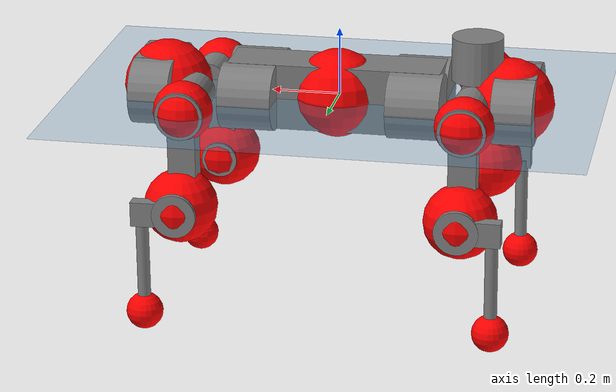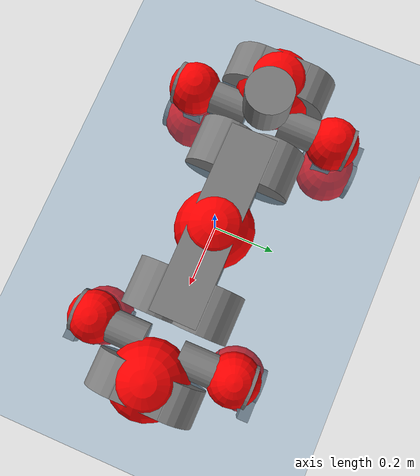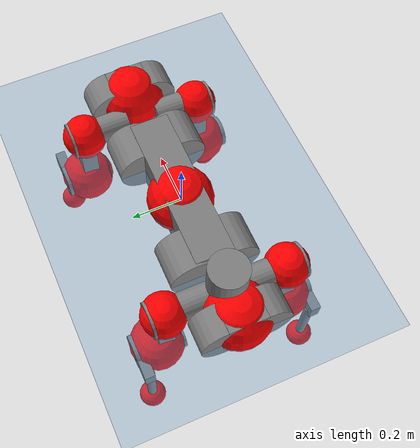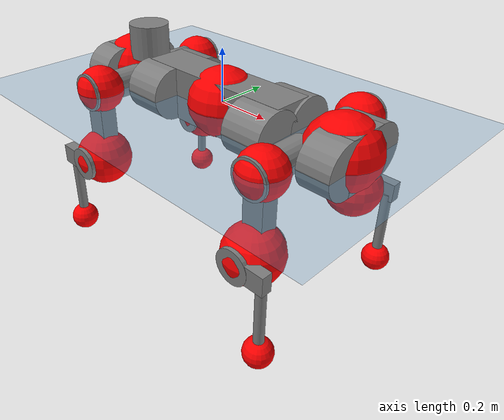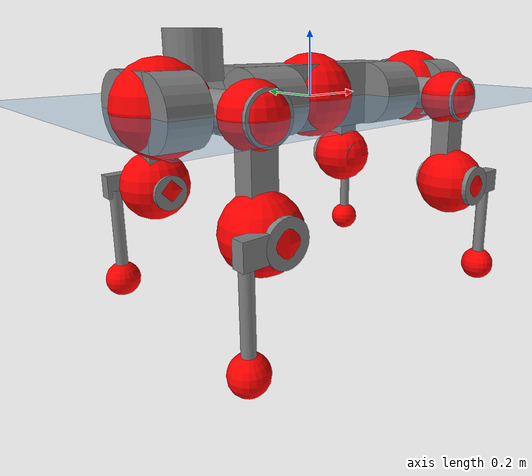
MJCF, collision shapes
<mujoco model="anymal_c">
  <compiler angle="radian" assetdir="assets" balanceinertia="true" inertiafromgeom="false"/>

  <option timestep="0.005" density="1.2" viscosity="2e-05"/>

  <size nkey="1"/>

  <visual>
    <quality shadowsize="8192"/>
    <map shadowclip="0.5"/>
  </visual>

  <default>
    <default class="/">
      <material specular="0" shininess="0.25"/>
      <geom contype="0" conaffinity="0" group="1" solref="-1000 -80"/>
      <site size="0.01 0.005 0.005" group="5"/>
      <general forcelimited="true" forcerange="-80 80" biastype="affine" gainprm="80" biasprm="0 -80 -2"/>
      <default class="anymal_c">
        <joint armature="0.01" damping="0.01" frictionloss="0.1"/>
        <default class="visual">
          <geom type="mesh" group="2"/>
          <default class="visual_zflip"/>
        </default>
        <default class="collision">
          <geom type="cylinder" group="3"/>
          <default class="foot">
            <geom size="0.03 0 0" type="sphere" condim="6" priority="1" friction="0.8 0.02 0.01" solimp="0.015 1 0.03"/>
          </default>
        </default>
      </default>
      <default class="reward_collision_sphere">
        <geom group="5" rgba="1 0 0 1"/>
      </default>
    </default>
  </default>

  <asset>
    <texture type="skybox" colorspace="auto" name="//unnamed_texture_0" builtin="gradient" rgb1="0.95 0.95 0.95" rgb2="0.95 0.95 0.95" width="100" height="600"/>
    <texture type="2d" colorspace="auto" name="texplane" builtin="checker" rgb1="0.345 0.575 0.748" rgb2="0.345 0.575 0.748" markrgb="1 1 1" width="512" height="512"/>
    <texture type="2d" colorspace="linear" name="base" file="base.png"/>
    <texture type="2d" colorspace="linear" name="top_shell" file="top_shell.png"/>
    <texture type="2d" colorspace="linear" name="bottom_shell" file="bottom_shell.png"/>
    <texture type="2d" colorspace="linear" name="remote" file="remote.png"/>
    <texture type="2d" colorspace="linear" name="hatch" file="hatch.png"/>
    <texture type="2d" colorspace="linear" name="handle" file="handle.png"/>
    <texture type="2d" colorspace="linear" name="face" file="face.png"/>
    <texture type="2d" colorspace="linear" name="battery" file="battery.png"/>
    <texture type="2d" colorspace="linear" name="lidar_cage" file="lidar_cage.png"/>
    <texture type="2d" colorspace="linear" name="depth_camera" file="depth_camera.png"/>
    <texture type="2d" colorspace="linear" name="wide_angle_camera" file="wide_angle_camera.png"/>
    <texture type="2d" colorspace="linear" name="lidar" file="lidar.png"/>
    <texture type="2d" colorspace="linear" name="drive" file="drive.png"/>
    <texture type="2d" colorspace="linear" name="hip_l" file="hip_l.png"/>
    <texture type="2d" colorspace="linear" name="shank_l" file="shank_l.png"/>
    <texture type="2d" colorspace="linear" name="foot" file="foot.png"/>
    <texture type="2d" colorspace="linear" name="thigh" file="thigh.png"/>
    <texture type="2d" colorspace="linear" name="shank_r" file="shank_r.png"/>
    <texture type="2d" colorspace="linear" name="hip_r" file="hip_r.png"/>
    <material name="MatPlane" class="/" texture="texplane" texuniform="true" texrepeat="2 2" specular="0.9" shininess="0.5"/>
    <material name="black_plastic" class="/" rgba="0.007 0.007 0.007 1"/>
    <material name="green" class="/" rgba="0.052 0.178 0.033 1"/>
    <material name="red" class="/" rgba="0.178 0.006 0.005 1"/>
    <material name="yellow" class="/" rgba="0.178 0.119 0.006 1"/>
    <material name="lwl" class="/" rgba="0.8 0.8 0.8 1"/>
    <material name="base" class="/" texture="base"/>
    <material name="top_shell" class="/" texture="top_shell"/>
    <material name="bottom_shell" class="/" texture="bottom_shell"/>
    <material name="hip_l" class="/" texture="hip_l"/>
    <material name="thigh" class="/" texture="thigh"/>
    <material name="shank_l" class="/" texture="shank_l"/>
    <material name="foot" class="/" texture="foot"/>
    <material name="hip_r" class="/" texture="hip_r"/>
    <material name="shank" class="/" texture="shank_r"/>
    <material name="hatch" class="/" texture="hatch"/>
    <material name="remote" class="/" texture="remote"/>
    <material name="handle" class="/" texture="handle"/>
    <material name="face" class="/" texture="face"/>
    <material name="depth_camera" class="/" texture="depth_camera"/>
    <material name="wide_angle_camera" class="/" texture="wide_angle_camera"/>
    <material name="battery" class="/" texture="battery"/>
    <material name="lidar_cage" class="/" texture="lidar_cage"/>
    <material name="lidar" class="/" texture="lidar"/>
    <material name="drive" class="/" texture="drive"/>
    <mesh name="base_0" class="/" file="base_0.obj"/>
    <mesh name="base_1" class="/" file="base_1.obj"/>
    <mesh name="base_2" class="/" file="base_2.obj"/>
    <mesh name="base_3" class="/" file="base_3.obj"/>
    <mesh name="base_4" class="/" file="base_4.obj"/>
    <mesh name="base_5" class="/" file="base_5.obj"/>
    <mesh name="top_shell" class="/" file="top_shell.obj"/>
    <mesh name="bottom_shell" class="/" file="bottom_shell.obj"/>
    <mesh name="remote" class="/" file="remote.obj"/>
    <mesh name="handle" class="/" file="handle.obj"/>
    <mesh name="face" class="/" file="face.obj"/>
    <mesh name="wide_angle_camera" class="/" file="wide_angle_camera.obj"/>
    <mesh name="depth_camera" class="/" file="depth_camera.obj"/>
    <mesh name="battery" class="/" file="battery.obj"/>
    <mesh name="lidar_cage" class="/" file="lidar_cage.obj"/>
    <mesh name="lidar" class="/" file="lidar.obj"/>
    <mesh name="drive" class="/" file="drive.obj"/>
    <mesh name="hip_l" class="/" file="hip_l.obj"/>
    <mesh name="thigh" class="/" file="thigh.obj"/>
    <mesh name="shank_l" class="/" file="shank_l.obj"/>
    <mesh name="foot" class="/" file="foot.obj"/>
    <mesh name="hip_r" class="/" file="hip_r.obj"/>
    <mesh name="hatch" class="/" file="hatch.obj"/>
    <mesh name="shank_r" class="/" file="shank_r.obj"/>
  </asset>

  <worldbody>
    <geom name="floor" class="/" size="100 100 0.125" type="plane" group="0" material="MatPlane"/>
    <light name="toplight_shadow" class="/" pos="0 0 5" dir="0.0990148 0.0990148 -0.990148" type="directional" ambient="0.04 0.04 0.04" diffuse="0.55 0.55 0.55" specular="0.12 0.12 0.12"/>
    <light name="toplight_fill" class="/" pos="0 0 5" dir="0.0990148 0.0990148 -0.990148" type="directional" castshadow="false" ambient="0.04 0.04 0.04" diffuse="0.3 0.3 0.3" specular="0.08 0.08 0.08"/>
    <body name="trunk" childclass="anymal_c" pos="0.005641 0.00125086 0.00314991" quat="0.999997 -0.000729094 0.00137529 -0.00172895">
      <inertial pos="0.00615198 -0.00366999 0.0467384" quat="0.51834 0.51224 0.495041 0.473148" mass="23.3541" diaginertia="1.02069 1.16562 0.166"/>
      <joint name="//unnamed_joint_0" type="free" armature="0" damping="0" frictionloss="0"/>
      <geom name="//unnamed_geom_1" class="visual" material="green" mesh="base_0"/>
      <geom name="//unnamed_geom_2" class="visual" material="yellow" mesh="base_1"/>
      <geom name="//unnamed_geom_3" class="visual" material="red" mesh="base_2"/>
      <geom name="//unnamed_geom_4" class="visual" material="black_plastic" mesh="base_3"/>
      <geom name="//unnamed_geom_5" class="visual" material="lwl" mesh="base_4"/>
      <geom name="//unnamed_geom_6" class="visual" material="base" mesh="base_5"/>
      <geom name="trunk_1" class="collision" size="0.316039 0.0762854 0.0980812" type="box"/>
      <geom name="trunk_2" class="collision" size="0.0980812 0.0790099" pos="0.247919 0.0800679 0" quat="0.707107 0 0.707107 0"/>
      <geom name="trunk_3" class="collision" size="0.0980812 0.0790099" pos="-0.247919 0.0800679 0" quat="0.707107 0 0.707107 0"/>
      <geom name="trunk_4" class="collision" size="0.0980812 0.0790099" pos="0.247919 -0.0800679 0" quat="0.707107 0 0.707107 0"/>
      <geom name="trunk_5" class="collision" size="0.0980812 0.0790099" pos="-0.247919 -0.0800679 0" quat="0.707107 0 0.707107 0"/>
      <geom name="//unnamed_geom_12" class="visual" material="top_shell" mesh="top_shell"/>
      <geom name="//unnamed_geom_13" class="visual" material="bottom_shell" mesh="bottom_shell"/>
      <geom name="//unnamed_geom_14" class="visual" material="remote" mesh="remote"/>
      <geom name="//unnamed_geom_15" class="visual" material="handle" mesh="handle"/>
      <geom name="//unnamed_geom_16" class="visual" pos="0.47247 0 0" quat="1 0 0 0" material="face" mesh="face"/>
      <geom name="trunk_6" class="collision" size="0.0599385 0.0762854 0.0980812" pos="0.535163 0 0" type="box"/>
      <geom name="//unnamed_geom_18" class="collision" size="0.0980812 0.0599385" pos="0.535163 0.0800679 0" quat="0.707107 0 0.707107 0"/>
      <geom name="//unnamed_geom_19" class="collision" size="0.0980812 0.0599385" pos="0.535163 -0.0800679 0" quat="0.707107 0 0.707107 0"/>
      <geom name="//unnamed_geom_20" class="visual" pos="0.526208 0 -0.0276105" quat="0.965926 0 0.258819 0" material="depth_camera" mesh="depth_camera"/>
      <geom name="//unnamed_geom_21" class="visual" pos="0.584746 0 0.0147558" material="wide_angle_camera" mesh="wide_angle_camera"/>
      <geom name="//unnamed_geom_22" class="visual_zflip" pos="-0.47247 0 0" quat="0 0 0 1" material="face" mesh="face"/>
      <geom name="trunk_7" class="collision" size="0.0599385 0.0762854 0.0980812" pos="-0.535163 0 0" quat="0 0 0 1" type="box"/>
      <geom name="//unnamed_geom_24" class="collision" size="0.0980812 0.0599385" pos="-0.535163 -0.0800679 0" quat="0 -0.707107 0 0.707107"/>
      <geom name="//unnamed_geom_25" class="collision" size="0.0980812 0.0599385" pos="-0.535163 0.0800679 0" quat="0 -0.707107 0 0.707107"/>
      <geom name="//unnamed_geom_26" class="visual" pos="-0.526208 0 -0.0276105" quat="0 -0.258819 0 0.965926" material="depth_camera" mesh="depth_camera"/>
      <geom name="//unnamed_geom_27" class="visual_zflip" pos="-0.584746 0 0.0147558" quat="0 0 0 1" material="wide_angle_camera" mesh="wide_angle_camera"/>
      <geom name="//unnamed_geom_28" class="visual" material="battery" mesh="battery"/>
      <geom name="//unnamed_geom_29" class="visual" pos="0 0.0875027 0.029806" quat="0.683013 -0.183013 0.183013 0.683013" material="depth_camera" mesh="depth_camera"/>
      <geom name="//unnamed_geom_30" class="visual" pos="0 -0.0875027 0.029806" quat="0.683013 0.183013 0.183013 -0.683013" material="depth_camera" mesh="depth_camera"/>
      <geom name="//unnamed_geom_31" class="visual" pos="-0.414908 0 0.0724483" quat="1 0 0 0" material="lidar_cage" mesh="lidar_cage"/>
      <geom name="trunk_8" class="collision" size="0.0762854 0.0653875" pos="-0.414908 0 0.13159"/>
      <geom name="//unnamed_geom_33" class="visual" pos="-0.414908 1.55993e-06 0.140165" quat="0.707107 0 0 -0.707107" material="lidar" mesh="lidar"/>
      <geom name="//unnamed_geom_34" class="visual" pos="0.341843 0.118902 2.72787e-09" quat="0.258819 0.965926 0 0" material="drive" mesh="drive"/>
      <geom name="//unnamed_geom_35" class="visual" pos="0.341843 -0.118902 -2.72787e-09" quat="0.258819 -0.965926 0 0" material="drive" mesh="drive"/>
      <geom name="//unnamed_geom_36" class="visual" pos="-0.341843 0.118902 -2.72787e-09" quat="0 0 0.965926 -0.258819" material="drive" mesh="drive"/>
      <geom name="//unnamed_geom_37" class="visual" pos="-0.341843 -0.118902 2.72787e-09" quat="0 0 -0.965926 -0.258819" material="drive" mesh="drive"/>
      <geom name="//unnamed_geom_38" class="visual" pos="0.132223 0 0.0719554" quat="1 0 0 0" material="hatch" mesh="hatch"/>
      <geom name="//unnamed_geom_39" class="reward_collision_sphere" size="0.130775"/>
      <geom name="//unnamed_geom_40" class="reward_collision_sphere" size="0.130775" pos="0.512935 0 0"/>
      <geom name="//unnamed_geom_41" class="reward_collision_sphere" size="0.130775" pos="-0.512935 0 0"/>
      <site name="imu" pos="0.264965 0.0635361 0.0526597" size="0.0108979"/>
      <camera name="track" pos="0 -2.28765 0" quat="0.707107 0.707107 0 0" mode="trackcom"/>
      <camera name="ego_camera" pos="0.512935 0 -0.0394276" quat="-0.5 -0.5 0.5 0.5"/>
      <body name="LF_HIP" pos="0.343627 0.119157 0.0045489" quat="0.257489 0.966268 0.00477928 -0.00156062">
        <inertial pos="0.0679125 -0.0152332 -0.00788644" quat="-0.151572 0.695651 -0.140444 0.68802" mass="3.2058" diaginertia="0.00993685 0.00861029 0.00260465"/>
        <joint name="LF_HAA" pos="0 0 0" axis="0.999835 -0.00531426 -0.0173762" range="-0.894291 0.47276" armature="0.00724354" damping="0.0240196" frictionloss="0.10265"/>
        <geom name="//unnamed_geom_42" class="visual" pos="0 0.000160468 -2.63568e-05" quat="0.258819 -0.965926 0 0" material="hip_l" mesh="hip_l"/>
        <geom name="//unnamed_geom_43" class="visual" pos="0.0682774 -0.0827287 -0.0465938" quat="0.183013 -0.683013 0.683013 0.183013" material="drive" mesh="drive"/>
        <geom name="//unnamed_geom_44" class="collision" size="0.0544896 0.0762854" pos="0.0682774 -0.0136799 -0.00680619" quat="-0.353553 -0.612372 0.612372 -0.353553"/>
        <body name="LF_THIGH" pos="0.0679254 -0.0828559 -0.0421901" quat="0.183226 -0.683694 0.682304 0.182897">
          <inertial pos="0.0337154 0.00891014 -0.231332" quat="0.993275 -0.00553018 -0.0817174 0.0818296" mass="4.02024" diaginertia="0.0602329 0.0625879 0.0040173"/>
          <joint name="LF_HFE" pos="0 0 0" axis="1 -9.98358e-06 0.000318676" range="-3.15556 2.93617" armature="0.0129582" damping="0.056845" frictionloss="0.110727"/>
          <geom name="//unnamed_geom_45" class="visual" pos="-7.89986e-05 -1.24483e-07 0" quat="0.707107 0 0 -0.707107" material="thigh" mesh="thigh"/>
          <geom name="//unnamed_geom_46" class="collision" size="0.0708364 0.0435917" pos="0.0455943 0 0" quat="0.5 0.5 -0.5 -0.5"/>
          <geom name="//unnamed_geom_47" class="collision" size="0.0408672 0.0326937 0.154003" pos="0.0341957 0 -0.139292" quat="0.707107 0 0 -0.707107" type="box"/>
          <geom name="//unnamed_geom_48" class="visual" pos="0.114328 0 -0.280922" quat="1 0 0 0" material="drive" mesh="drive"/>
          <geom name="//unnamed_geom_49" class="collision" size="0.0544896 0.0762854" pos="0.0345376 0 -0.280922" quat="0.707107 0 0.707107 0"/>
          <geom name="//unnamed_geom_50" class="reward_collision_sphere" size="0.0871833" pos="0.0284964 0 0"/>
          <body name="LF_SHANK" pos="0.103413 -0.00959422 -0.286119" quat="1 1.43275e-05 -3.47177e-05 1.36813e-05">
            <inertial pos="0.00686395 -0.0663279 -0.0846991" quat="0.993003 -0.11533 -0.000736375 -0.0253683" mass="0.69182" diaginertia="0.0186243 0.0184043 0.00106339"/>
            <joint name="LF_KFE" pos="0 0 0" axis="0.999963 -0.00487982 -0.00707268" stiffness="0.0501442" range="-3.24148 3.29955" armature="0.0111815" damping="0.00932253" frictionloss="0.101122"/>
            <geom name="//unnamed_geom_51" class="visual" pos="-2.57597e-05 -0.000137352 0" quat="0.707107 0 0 -0.707107" material="shank_l" mesh="shank_l"/>
            <geom name="LF_kfe_act" class="collision" size="0.0653875 0.0217958" pos="0.0227971 0 0" quat="0.5 0.5 -0.5 -0.5"/>
            <geom name="//unnamed_geom_53" class="collision" size="0.0626619 0.0367805 0.020706" pos="0.0227971 -0.0657689 0" quat="0.5 0.5 -0.5 -0.5" type="box"/>
            <geom name="//unnamed_geom_54" class="visual" pos="0.0148751 -0.100644 -0.333134" quat="0.382683 0 0 -0.92388" material="foot" mesh="foot"/>
            <geom name="LF_calf" class="collision" size="0.0190713 0.153935" pos="0.0148751 -0.1006 -0.166567" quat="0.707107 0 0 -0.707107"/>
            <geom name="LF_foot" class="foot" size="0.0439074" pos="0.0148751 -0.1006 -0.310956" quat="0.707107 0 0 -0.707107"/>
            <geom name="//unnamed_geom_57" class="reward_collision_sphere" size="0.108979" pos="-0.0569928 0 0"/>
            <geom name="//unnamed_geom_58" class="reward_collision_sphere" size="0.0544896" pos="0.0148751 -0.1006 -0.310956"/>
            <site name="LF_foot" class="foot" pos="0.0148751 -0.1006 -0.310956" quat="0.707107 0 0 -0.707107" size="0.0108979"/>
          </body>
        </body>
      </body>
      <body name="RF_HIP" pos="0.339034 -0.122118 -0.00925474" quat="0.259118 -0.965846 -0.000210797 -1.06752e-05">
        <inertial pos="0.0649708 0.0227366 -0.00671835" quat="0.103364 0.69684 0.148067 0.694123" mass="3.16439" diaginertia="0.0103673 0.00828362 0.00272885"/>
        <joint name="RF_HAA" pos="0 0 0" axis="1 0.000302461 -0.000798454" range="-0.608948 0.75504" armature="0.0106252" damping="0.0176295" frictionloss="0.102821"/>
        <geom name="//unnamed_geom_59" class="visual" pos="0 -0.000160467 -2.63567e-05" quat="0.258819 0.965926 0 0" material="hip_r" mesh="hip_r"/>
        <geom name="//unnamed_geom_60" class="visual" pos="0.0682774 0.0827287 -0.0465938" quat="0.183013 0.683013 0.683013 -0.183013" material="drive" mesh="drive"/>
        <geom name="//unnamed_geom_61" class="collision" size="0.0544896 0.0762854" pos="0.0682774 0.0136799 -0.00680619" quat="-0.353553 0.612372 0.612372 0.353553"/>
        <body name="RF_THIGH" pos="0.0655741 0.0798145 -0.0345398" quat="0.182956 0.68322 0.682698 -0.183469">
          <inertial pos="0.0354674 -3.47609e-05 -0.232627" quat="0.993422 -0.0562682 -0.0627049 0.0775565" mass="3.48079" diaginertia="0.0536535 0.0515269 0.00342694"/>
          <joint name="RF_HFE" pos="0 0 0" axis="0.999854 -0.00118435 0.017041" stiffness="0.0105478" range="-2.95547 3.00549" armature="0.0142693" damping="0.0110659" frictionloss="0.110629"/>
          <geom name="//unnamed_geom_62" class="visual" pos="-7.89986e-05 -1.24483e-07 0" quat="0.707107 0 0 -0.707107" material="thigh" mesh="thigh"/>
          <geom name="//unnamed_geom_63" class="collision" size="0.0708364 0.0435917" pos="0.0455943 0 0" quat="0.5 0.5 0.5 0.5"/>
          <geom name="//unnamed_geom_64" class="collision" size="0.0408672 0.0326937 0.154003" pos="0.0341957 0 -0.139292" quat="0.707107 0 0 0.707107" type="box"/>
          <geom name="//unnamed_geom_65" class="visual" pos="0.114328 0 -0.280922" quat="1 0 0 0" material="drive" mesh="drive"/>
          <geom name="//unnamed_geom_66" class="collision" size="0.0544896 0.0762854" pos="0.0345376 0 -0.280922" quat="0.707107 0 0.707107 0"/>
          <geom name="//unnamed_geom_67" class="reward_collision_sphere" size="0.0871833" pos="0.0284964 0 0"/>
          <body name="RF_SHANK" pos="0.113534 0.00211598 -0.281911" quat="1 -0.000100758 -0.000101473 -5.48119e-05">
            <inertial pos="0.00703458 0.0721468 -0.0906341" quat="0.991684 0.12604 0.0132761 0.0223761" mass="0.937662" diaginertia="0.0217137 0.0178766 0.0013133"/>
            <joint name="RF_KFE" pos="0 0 0" axis="0.999973 -0.00384573 -0.00626624" range="-3.07827 3.20855" armature="0.00753262" damping="0.0066378" frictionloss="0.10805"/>
            <geom name="//unnamed_geom_68" class="visual" pos="-2.57596e-05 0.000137352 0" quat="0.707107 0 0 0.707107" material="shank" mesh="shank_r"/>
            <geom name="RF_kfe_act" class="collision" size="0.0653875 0.0217958" pos="0.0227971 0 0" quat="0.5 0.5 0.5 0.5"/>
            <geom name="//unnamed_geom_70" class="collision" size="0.0626619 0.0367805 0.020706" pos="0.0227971 0.0657689 0" quat="0.5 0.5 0.5 0.5" type="box"/>
            <geom name="//unnamed_geom_71" class="visual" pos="0.0148751 0.100644 -0.333134" quat="0.382683 0 0 0.92388" material="foot" mesh="foot"/>
            <geom name="RF_calf" class="collision" size="0.0190713 0.153935" pos="0.0148751 0.1006 -0.166567" quat="0.707107 0 0 0.707107"/>
            <geom name="RF_foot" class="foot" size="0.0314131" pos="0.0148751 0.1006 -0.310956" quat="0.707107 0 0 0.707107"/>
            <geom name="//unnamed_geom_74" class="reward_collision_sphere" size="0.108979" pos="-0.0569928 0 0"/>
            <geom name="//unnamed_geom_75" class="reward_collision_sphere" size="0.0544896" pos="0.0148751 0.1006 -0.310956"/>
            <site name="RF_foot" class="foot" pos="0.0148751 0.1006 -0.310956" quat="0.707107 0 0 0.707107" size="0.0108979"/>
          </body>
        </body>
      </body>
      <body name="LH_HIP" pos="-0.342317 0.121785 0.00882429" quat="0.000258323 -0.000487411 0.9659 -0.258914">
        <inertial pos="0.0661084 0.0154717 0.000429286" quat="0.140926 0.676672 0.130672 0.71076" mass="3.15029" diaginertia="0.00998486 0.0100574 0.00307276"/>
        <joint name="LH_HAA" pos="0 0 0" axis="0.999996 0.00264929 0.000777357" range="-0.698552 0.550079" armature="0.0106067" damping="0.0296233" frictionloss="0.0627607"/>
        <geom name="//unnamed_geom_76" class="visual" pos="0 -0.000160467 -2.63567e-05" quat="-0.258819 -0.965926 0 0" material="hip_r" mesh="hip_r"/>
        <geom name="//unnamed_geom_77" class="visual" pos="0.0682774 0.0827287 -0.0465938" quat="0.183013 0.683013 0.683013 -0.183013" material="drive" mesh="drive"/>
        <geom name="//unnamed_geom_78" class="collision" size="0.0544896 0.0762854" pos="0.0682774 0.0136799 -0.00680619" quat="-0.353553 0.612372 0.612372 0.353553"/>
        <body name="LH_THIGH" pos="0.0692563 0.0832596 -0.0395458" quat="0.183078 0.683112 0.682769 -0.183486">
          <inertial pos="0.0432991 0.000937834 -0.231435" quat="0.991659 0.0128028 -0.110305 0.0654368" mass="3.83026" diaginertia="0.0632292 0.0582855 0.00420217"/>
          <joint name="LH_HFE" pos="0 0 0" axis="0.999167 -0.0100638 -0.0395368" stiffness="0.00381866" range="-2.97156 3.12615" armature="0.0101446" damping="0.00458009" frictionloss="0.10036"/>
          <geom name="//unnamed_geom_79" class="visual" pos="-7.89986e-05 -1.24483e-07 0" quat="0.707107 0 0 -0.707107" material="thigh" mesh="thigh"/>
          <geom name="//unnamed_geom_80" class="collision" size="0.0708364 0.0435917" pos="0.0455943 0 0" quat="0.5 0.5 -0.5 -0.5"/>
          <geom name="//unnamed_geom_81" class="collision" size="0.0408672 0.0326937 0.154003" pos="0.0341957 0 -0.139292" quat="0.707107 0 0 -0.707107" type="box"/>
          <geom name="//unnamed_geom_82" class="visual" pos="0.114328 0 -0.280922" quat="1 0 0 0" material="drive" mesh="drive"/>
          <geom name="//unnamed_geom_83" class="collision" size="0.0544896 0.0762854" pos="0.0345376 0 -0.280922" quat="0.707107 0 0.707107 0"/>
          <geom name="//unnamed_geom_84" class="reward_collision_sphere" size="0.0871833" pos="0.0284964 0 0"/>
          <body name="LH_SHANK" pos="0.118618 -0.00224964 -0.274887" quat="0.999999 -0.000974977 0.000513317 0.000642476">
            <inertial pos="0.00237349 0.0743229 -0.0845401" quat="0.992549 0.106897 -0.00334064 0.0583754" mass="0.826118" diaginertia="0.019633 0.0178033 0.00106602"/>
            <joint name="LH_KFE" pos="0 0 0" axis="0.99987 0.00480419 -0.0153899" stiffness="0.0536962" range="-3.16351 3.14426" armature="0.0111708" damping="0.0166534" frictionloss="0.0868609"/>
            <geom name="//unnamed_geom_85" class="visual" pos="-2.57596e-05 0.000137352 0" quat="-0.707107 0 0 -0.707107" material="shank" mesh="shank_r"/>
            <geom name="LH_kfe_act" class="collision" size="0.0653875 0.0217958" pos="0.0227971 0 0" quat="0.5 0.5 -0.5 -0.5"/>
            <geom name="//unnamed_geom_87" class="collision" size="0.0626619 0.0367805 0.020706" pos="0.0227971 0.0657689 0" quat="0.5 0.5 -0.5 -0.5" type="box"/>
            <geom name="//unnamed_geom_88" class="visual" pos="0.0148751 0.100644 -0.333134" quat="-0.382683 0 0 -0.92388" material="foot" mesh="foot"/>
            <geom name="LH_calf" class="collision" size="0.0190713 0.153935" pos="0.0148751 0.1006 -0.166567" quat="0.707107 0 0 -0.707107"/>
            <geom name="LH_foot" class="foot" size="0.0307454" pos="0.0148751 0.1006 -0.310956" quat="0.707107 0 0 -0.707107"/>
            <geom name="//unnamed_geom_91" class="reward_collision_sphere" size="0.108979" pos="-0.0569928 0 0"/>
            <geom name="//unnamed_geom_92" class="reward_collision_sphere" size="0.0544896" pos="0.0148751 0.1006 -0.310956"/>
            <site name="LH_foot" class="foot" pos="0.0148751 0.1006 -0.310956" quat="0.707107 0 0 -0.707107" size="0.0108979"/>
          </body>
        </body>
      </body>
      <body name="RH_HIP" pos="-0.341741 -0.118565 -0.00421482" quat="0.000665812 0.000353247 -0.966 -0.25854">
        <inertial pos="0.0662075 -0.025782 -0.0025868" quat="-0.128158 0.70968 -0.135473 0.679394" mass="3.93649" diaginertia="0.0125513 0.0107628 0.00342624"/>
        <joint name="RH_HAA" pos="0 0 0" axis="0.999987 -0.00468764 -0.00197248" range="-0.752359 0.62932" armature="0.0126796" damping="0.0453198" frictionloss="0.101365"/>
        <geom name="//unnamed_geom_93" class="visual" pos="0 0.000160468 -2.63568e-05" quat="-0.258819 0.965926 0 0" material="hip_l" mesh="hip_l"/>
        <geom name="//unnamed_geom_94" class="visual" pos="0.0682774 -0.0827287 -0.0465938" quat="-0.183013 0.683013 -0.683013 -0.183013" material="drive" mesh="drive"/>
        <geom name="//unnamed_geom_95" class="collision" size="0.0544896 0.0762854" pos="0.0682774 -0.0136799 -0.00680619" quat="0.353553 0.612372 -0.612372 0.353553"/>
        <body name="RH_THIGH" pos="0.0690014 -0.0857116 -0.0504702" quat="-0.182864 0.682771 -0.68332 -0.182914">
          <inertial pos="0.0396355 -0.0056507 -0.241682" quat="0.993244 -0.00622267 -0.0798136 0.0840075" mass="4.7127" diaginertia="0.0613768 0.0624207 0.00387236"/>
          <joint name="RH_HFE" pos="0 0 0" axis="0.999977 0.00675022 0.000580336" range="-2.95605 2.97274" armature="0.0115907" damping="0.00653617" frictionloss="0.148447"/>
          <geom name="//unnamed_geom_96" class="visual" pos="-7.89986e-05 -1.24483e-07 0" quat="0.707107 0 0 -0.707107" material="thigh" mesh="thigh"/>
          <geom name="//unnamed_geom_97" class="collision" size="0.0708364 0.0435917" pos="0.0455943 0 0" quat="0.5 0.5 0.5 0.5"/>
          <geom name="//unnamed_geom_98" class="collision" size="0.0408672 0.0326937 0.154003" pos="0.0341957 0 -0.139292" quat="0.707107 0 0 0.707107" type="box"/>
          <geom name="//unnamed_geom_99" class="visual" pos="0.114328 0 -0.280922" quat="1 0 0 0" material="drive" mesh="drive"/>
          <geom name="//unnamed_geom_100" class="collision" size="0.0544896 0.0762854" pos="0.0345376 0 -0.280922" quat="0.707107 0 0.707107 0"/>
          <geom name="//unnamed_geom_101" class="reward_collision_sphere" size="0.0871833" pos="0.0284964 0 0"/>
          <body name="RH_SHANK" pos="0.104885 -0.000502775 -0.283534" quat="1 2.2346e-05 0.000222778 -0.000509424">
            <inertial pos="0.00500396 -0.0694201 -0.0800293" quat="0.992805 -0.116059 0.00315056 -0.0293027" mass="0.872327" diaginertia="0.0206881 0.0188095 0.00113373"/>
            <joint name="RH_KFE" pos="0 0 0" axis="0.999838 -0.0082675 0.0159713" stiffness="0.0176677" range="-3.10616 3.05985" armature="0.0122209" damping="0.0539494" frictionloss="0.100235"/>
            <geom name="//unnamed_geom_102" class="visual" pos="-2.57597e-05 -0.000137352 0" quat="0.707107 0 0 -0.707107" material="shank_l" mesh="shank_l"/>
            <geom name="RH_kfe_act" class="collision" size="0.0653875 0.0217958" pos="0.0227971 0 0" quat="0.5 0.5 0.5 0.5"/>
            <geom name="//unnamed_geom_104" class="collision" size="0.0626619 0.0367805 0.020706" pos="0.0227971 -0.0657689 0" quat="0.5 0.5 0.5 0.5" type="box"/>
            <geom name="//unnamed_geom_105" class="visual" pos="0.0148751 -0.100644 -0.333134" quat="0.382683 0 0 -0.92388" material="foot" mesh="foot"/>
            <geom name="RH_calf" class="collision" size="0.0190713 0.153935" pos="0.0148751 -0.1006 -0.166567" quat="0.707107 0 0 0.707107"/>
            <geom name="RH_foot" class="foot" size="0.0308664" pos="0.0148751 -0.1006 -0.310956" quat="0.707107 0 0 0.707107"/>
            <geom name="//unnamed_geom_108" class="reward_collision_sphere" size="0.108979" pos="-0.0569928 0 0"/>
            <geom name="//unnamed_geom_109" class="reward_collision_sphere" size="0.0544896" pos="0.0148751 -0.1006 -0.310956"/>
            <site name="RH_foot" class="foot" pos="0.0148751 -0.1006 -0.310956" quat="0.707107 0 0 0.707107" size="0.0108979"/>
          </body>
        </body>
      </body>
    </body>
  </worldbody>

  <contact>
    <pair class="/" geom1="floor" geom2="LF_foot" name="//unnamed_contact_0"/>
    <pair class="/" geom1="floor" geom2="RF_foot" name="//unnamed_contact_1"/>
    <pair class="/" geom1="floor" geom2="LH_foot" name="//unnamed_contact_2"/>
    <pair class="/" geom1="floor" geom2="RH_foot" name="//unnamed_contact_3"/>
  </contact>

  <actuator>
    <general name="LF_HAA" class="/" joint="LF_HAA" forcerange="-90.9991 90.9991" gainprm="89.4238" biasprm="0 -89.4238 -1.73897"/>
    <general name="LF_HFE" class="/" joint="LF_HFE" forcerange="-62.5634 62.5634" gainprm="89.4238" biasprm="0 -89.4238 -1.73897"/>
    <general name="LF_KFE" class="/" joint="LF_KFE" forcerange="-115.261 115.261" gainprm="89.4238" biasprm="0 -89.4238 -1.73897"/>
    <general name="RF_HAA" class="/" joint="RF_HAA" forcerange="-94.3825 94.3825" gainprm="89.4238" biasprm="0 -89.4238 -1.73897"/>
    <general name="RF_HFE" class="/" joint="RF_HFE" forcerange="-73.3239 73.3239" gainprm="89.4238" biasprm="0 -89.4238 -1.73897"/>
    <general name="RF_KFE" class="/" joint="RF_KFE" forcerange="-50.6352 50.6352" gainprm="89.4238" biasprm="0 -89.4238 -1.73897"/>
    <general name="LH_HAA" class="/" joint="LH_HAA" forcerange="-58.4457 58.4457" gainprm="89.4238" biasprm="0 -89.4238 -1.73897"/>
    <general name="LH_HFE" class="/" joint="LH_HFE" forcerange="-78.0009 78.0009" gainprm="89.4238" biasprm="0 -89.4238 -1.73897"/>
    <general name="LH_KFE" class="/" joint="LH_KFE" forcerange="-99.4212 99.4212" gainprm="89.4238" biasprm="0 -89.4238 -1.73897"/>
    <general name="RH_HAA" class="/" joint="RH_HAA" forcerange="-88.1952 88.1952" gainprm="89.4238" biasprm="0 -89.4238 -1.73897"/>
    <general name="RH_HFE" class="/" joint="RH_HFE" forcerange="-121.333 121.333" gainprm="89.4238" biasprm="0 -89.4238 -1.73897"/>
    <general name="RH_KFE" class="/" joint="RH_KFE" forcerange="-109.711 109.711" gainprm="89.4238" biasprm="0 -89.4238 -1.73897"/>
  </actuator>

  <sensor>
    <gyro site="imu" name="imu_angular_velocity"/>
    <velocimeter site="imu" name="imu_linear_velocity"/>
    <framelinvel objtype="site" objname="LF_foot" name="LF_foot_global_linear_velocity"/>
    <framelinvel objtype="site" objname="RF_foot" name="RF_foot_global_linear_velocity"/>
    <framelinvel objtype="site" objname="LH_foot" name="LH_foot_global_linear_velocity"/>
    <framelinvel objtype="site" objname="RH_foot" name="RH_foot_global_linear_velocity"/>
  </sensor>

  <keyframe>
    <key name="home" qpos="0 0 0.55 1 0 0 0 0 0.4 -0.8 0 -0.4 0.8 0 -0.4 0.8 0 0.4 -0.8"/>
  </keyframe>
</mujoco>
